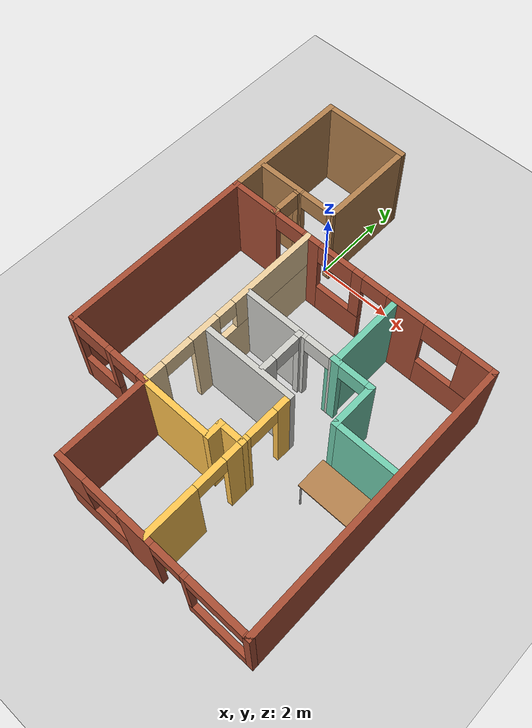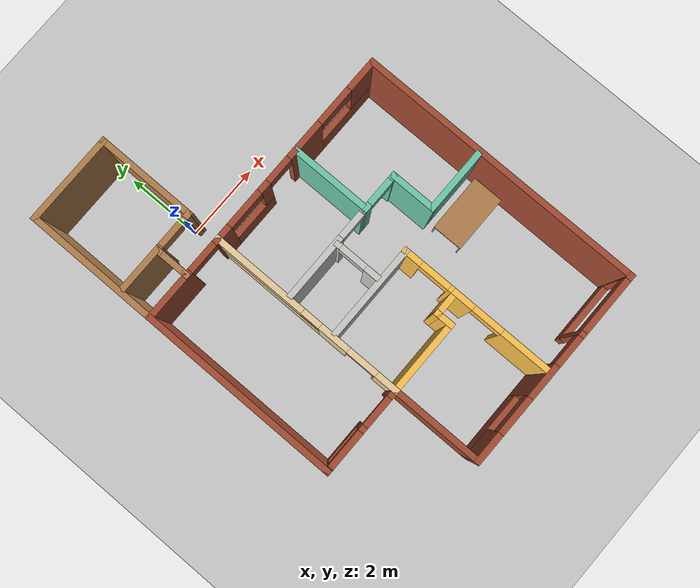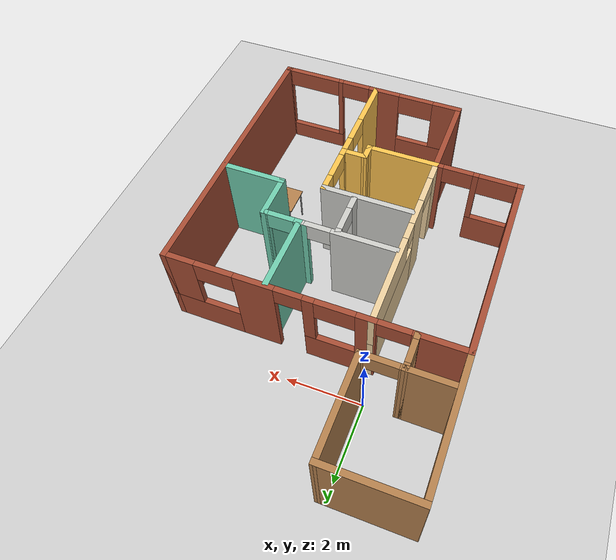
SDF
<sdf version="1.7">
 <world name="default">
  <plugin name="welcome" filename="libwelcome.so"/>
  <plugin filename="libcollision_map_creator.so" name="collision_map_creator"/>
  <light name="sun" type="directional">
   <pose>0 0 10 0 -0 0</pose>
   <diffuse>0.8 0.8 0.8 1</diffuse>
   <specular>0.2 0.2 0.2 1</specular>
   <attenuation>
    <range>1000</range>
    <constant>0.9</constant>
    <linear>0.01</linear>
    <quadratic>0.001</quadratic>
   </attenuation>
   <direction>-0.5 0.1 -0.9</direction>
   <spot><inner_angle>0</inner_angle><outer_angle>0</outer_angle><falloff>0</falloff></spot>
  </light>
  <model name="ground_plane">
   <static>1</static>
   <link name="link">
    <collision name="collision">
     <geometry><plane><normal>0 0 1</normal><size>100 100</size></plane></geometry>
     <surface>
      <contact><collide_bitmask>65535</collide_bitmask></contact>
      <friction><ode><mu>100</mu><mu2>50</mu2></ode></friction>
     </surface>
    </collision>
    <visual name="visual">
     <cast_shadows>0</cast_shadows>
     <geometry><plane><normal>0 0 1</normal><size>100 100</size></plane></geometry>
     <material>
      <script><uri>file://media/materials/scripts/gazebo.material</uri><name>Gazebo/Grey</name></script>
     </material>
    </visual>
   </link>
  </model>
  <gravity>0 0 -9.8</gravity>
  <magnetic_field>6e-06 2.3e-05 -4.2e-05</magnetic_field>
  <atmosphere type="adiabatic"/>
  <physics name="default_physics" default="0" type="ode">
   <max_step_size>0.001</max_step_size>
   <real_time_factor>1</real_time_factor>
   <real_time_update_rate>1000</real_time_update_rate>
  </physics>
  <scene><ambient>0.4 0.4 0.4 1</ambient><background>0.7 0.7 0.7 1</background><shadows>1</shadows></scene>
  <spherical_coordinates>
   <surface_model>EARTH_WGS84</surface_model>
   <latitude_deg>0</latitude_deg>
   <longitude_deg>0</longitude_deg>
   <elevation>0</elevation>
   <heading_deg>0</heading_deg>
  </spherical_coordinates>
  <model name="Building">
   <pose>1.6411 -2.93 0 0 -0 0</pose>
   <link name="Wall_101">
    <collision name="Wall_101_Collision">
     <geometry><box><size>3.5 0.15 2.5</size></box></geometry>
     <pose>0 0 1.25 0 -0 0</pose>
    </collision>
    <visual name="Wall_101_Visual">
     <pose>0 0 1.25 0 -0 0</pose>
     <geometry><box><size>3.5 0.15 2.5</size></box></geometry>
     <material>
      <script><uri>file://media/materials/scripts/gazebo.material</uri><name>Gazebo/Wood</name></script>
      <ambient>1 1 1 1</ambient>
     </material>
     <meta><layer>0</layer></meta>
    </visual>
    <pose>-3.72481 3.67494 0 0 -0 1.5708</pose>
   </link>
   <link name="Wall_107">
    <collision name="Wall_107_Collision">
     <geometry><box><size>2.39871 0.15 2.5</size></box></geometry>
     <pose>0 0 1.25 0 -0 0</pose>
    </collision>
    <visual name="Wall_107_Visual">
     <pose>0 0 1.25 0 -0 0</pose>
     <geometry><box><size>2.39871 0.15 2.5</size></box></geometry>
     <material>
      <script><uri>file://media/materials/scripts/gazebo.material</uri><name>Gazebo/Wood</name></script>
      <ambient>1 1 1 1</ambient>
     </material>
     <meta><layer>0</layer></meta>
    </visual>
    <pose>-2.60045 5.34997 0 0 -0 2.5e-05</pose>
   </link>
   <link name="Wall_109">
    <pose>-2.5181 2.433 0 0 -0 1.5708</pose>
    <visual name="Wall_109_Visual_0">
     <pose>-0.406862 0 1.25 0 -0 0</pose>
     <geometry><box><size>0.186276 0.15 2.5</size></box></geometry>
     <material>
      <script><uri>file://media/materials/scripts/gazebo.material</uri><name>Gazebo/Wood</name></script>
      <ambient>1 1 1 1</ambient>
     </material>
     <meta><layer>0</layer></meta>
    </visual>
    <collision name="Wall_109_Collision_0">
     <geometry><box><size>0.186276 0.15 2.5</size></box></geometry>
     <pose>-0.406862 0 1.25 0 -0 0</pose>
    </collision>
    <visual name="Wall_109_Visual_1">
     <pose>0.393138 0 1.25 0 -0 0</pose>
     <geometry><box><size>0.213724 0.15 2.5</size></box></geometry>
     <material>
      <script><uri>file://media/materials/scripts/gazebo.material</uri><name>Gazebo/Wood</name></script>
      <ambient>1 1 1 1</ambient>
     </material>
     <meta><layer>0</layer></meta>
    </visual>
    <collision name="Wall_109_Collision_1">
     <geometry><box><size>0.213724 0.15 2.5</size></box></geometry>
     <pose>0.393138 0 1.25 0 -0 0</pose>
    </collision>
    <visual name="Wall_109_Visual_2">
     <pose>-0.013724 0 2.25 0 -0 0</pose>
     <geometry><box><size>0.6 0.15 0.5</size></box></geometry>
     <material>
      <script><uri>file://media/materials/scripts/gazebo.material</uri><name>Gazebo/Wood</name></script>
      <ambient>1 1 1 1</ambient>
     </material>
     <meta><layer>0</layer></meta>
    </visual>
    <collision name="Wall_109_Collision_2">
     <geometry><box><size>0.6 0.15 0.5</size></box></geometry>
     <pose>-0.013724 0 2.25 0 -0 0</pose>
    </collision>
   </link>
   <link name="Wall_111">
    <collision name="Wall_111_Collision">
     <geometry><box><size>1.2505 0.15 2.5</size></box></geometry>
     <pose>0 0 1.25 0 -0 0</pose>
    </collision>
    <visual name="Wall_111_Visual">
     <pose>0 0 1.25 0 -0 0</pose>
     <geometry><box><size>1.2505 0.15 2.5</size></box></geometry>
     <material>
      <script><uri>file://media/materials/scripts/gazebo.material</uri><name>Gazebo/Wood</name></script>
      <ambient>1 1 1 1</ambient>
     </material>
     <meta><layer>0</layer></meta>
    </visual>
    <pose>-3.06835 2.85789 0 0 0 -3.14139</pose>
   </link>
   <link name="Wall_113">
    <pose>-1.9981 2.858 0 0 -0 0</pose>
    <visual name="Wall_113_Visual_0">
     <pose>-0.4985 0 1.25 0 -0 0</pose>
     <geometry><box><size>0.193 0.15 2.5</size></box></geometry>
     <material>
      <script><uri>file://media/materials/scripts/gazebo.material</uri><name>Gazebo/Wood</name></script>
      <ambient>1 1 1 1</ambient>
     </material>
     <meta><layer>0</layer></meta>
    </visual>
    <collision name="Wall_113_Collision_0">
     <geometry><box><size>0.193 0.15 2.5</size></box></geometry>
     <pose>-0.4985 0 1.25 0 -0 0</pose>
    </collision>
    <visual name="Wall_113_Visual_1">
     <pose>0.4965 0 1.25 0 -0 0</pose>
     <geometry><box><size>0.197 0.15 2.5</size></box></geometry>
     <material>
      <script><uri>file://media/materials/scripts/gazebo.material</uri><name>Gazebo/Wood</name></script>
      <ambient>1 1 1 1</ambient>
     </material>
     <meta><layer>0</layer></meta>
    </visual>
    <collision name="Wall_113_Collision_1">
     <geometry><box><size>0.197 0.15 2.5</size></box></geometry>
     <pose>0.4965 0 1.25 0 -0 0</pose>
    </collision>
    <visual name="Wall_113_Visual_2">
     <pose>-0.002 0 2.25 0 -0 0</pose>
     <geometry><box><size>0.8 0.15 0.5</size></box></geometry>
     <material>
      <script><uri>file://media/materials/scripts/gazebo.material</uri><name>Gazebo/Wood</name></script>
      <ambient>1 1 1 1</ambient>
     </material>
     <meta><layer>0</layer></meta>
    </visual>
    <collision name="Wall_113_Collision_2">
     <geometry><box><size>0.8 0.15 0.5</size></box></geometry>
     <pose>-0.002 0 2.25 0 -0 0</pose>
    </collision>
   </link>
   <link name="Wall_115">
    <collision name="Wall_115_Collision">
     <geometry><box><size>2.642 0.15 2.5</size></box></geometry>
     <pose>0 0 1.25 0 -0 0</pose>
    </collision>
    <visual name="Wall_115_Visual">
     <pose>0 0 1.25 0 -0 0</pose>
     <geometry><box><size>2.642 0.15 2.5</size></box></geometry>
     <material>
      <script><uri>file://media/materials/scripts/gazebo.material</uri><name>Gazebo/Wood</name></script>
      <ambient>1 1 1 1</ambient>
     </material>
     <meta><layer>0</layer></meta>
    </visual>
    <pose>-1.4771 4.104 0 0 -0 1.56999</pose>
   </link>
   <link name="Wall_25">
    <collision name="Wall_25_Collision">
     <geometry><box><size>5.2 0.15 2.5</size></box></geometry>
     <pose>0 0 1.25 0 -0 0</pose>
    </collision>
    <visual name="Wall_25_Visual">
     <pose>0 0 1.25 0 -0 0</pose>
     <geometry><box><size>5.2 0.15 2.5</size></box></geometry>
     <material>
      <script><uri>file://media/materials/scripts/gazebo.material</uri><name>Gazebo/Bricks</name></script>
      <ambient>1 1 1 1</ambient>
     </material>
     <meta><layer>0</layer></meta>
    </visual>
    <pose>-3.72495 -0.52503 0 0 0 -1.57085</pose>
   </link>
   <link name="Wall_27">
    <pose>-2.6006 -3.05 0 0 -0 0</pose>
    <visual name="Wall_27_Visual_0">
     <pose>-1.11544 0 1.25 0 -0 0</pose>
     <geometry><box><size>0.168303 0.15 2.5</size></box></geometry>
     <material>
      <script><uri>file://media/materials/scripts/gazebo.material</uri><name>Gazebo/Bricks</name></script>
      <ambient>0.760784 0.662745 0.627451 1</ambient>
     </material>
     <meta><layer>0</layer></meta>
    </visual>
    <collision name="Wall_27_Collision_0">
     <geometry><box><size>0.168303 0.15 2.5</size></box></geometry>
     <pose>-1.11544 0 1.25 0 -0 0</pose>
    </collision>
    <visual name="Wall_27_Visual_1">
     <pose>1.05915 0 1.25 0 -0 0</pose>
     <geometry><box><size>0.28088 0.15 2.5</size></box></geometry>
     <material>
      <script><uri>file://media/materials/scripts/gazebo.material</uri><name>Gazebo/Bricks</name></script>
      <ambient>0.760784 0.662745 0.627451 1</ambient>
     </material>
     <meta><layer>0</layer></meta>
    </visual>
    <collision name="Wall_27_Collision_1">
     <geometry><box><size>0.28088 0.15 2.5</size></box></geometry>
     <pose>1.05915 0 1.25 0 -0 0</pose>
    </collision>
    <visual name="Wall_27_Visual_2">
     <pose>-0.456289 0 0.45 0 -0 0</pose>
     <geometry><box><size>1.15 0.15 0.9</size></box></geometry>
     <material>
      <script><uri>file://media/materials/scripts/gazebo.material</uri><name>Gazebo/Bricks</name></script>
      <ambient>0.760784 0.662745 0.627451 1</ambient>
     </material>
     <meta><layer>0</layer></meta>
    </visual>
    <collision name="Wall_27_Collision_2">
     <geometry><box><size>1.15 0.15 0.9</size></box></geometry>
     <pose>-0.456289 0 0.45 0 -0 0</pose>
    </collision>
    <visual name="Wall_27_Visual_3">
     <pose>0.043711 0 1.7 0 -0 0</pose>
     <geometry><box><size>0.15 0.15 1.6</size></box></geometry>
     <material>
      <script><uri>file://media/materials/scripts/gazebo.material</uri><name>Gazebo/Bricks</name></script>
      <ambient>0.760784 0.662745 0.627451 1</ambient>
     </material>
     <meta><layer>0</layer></meta>
    </visual>
    <collision name="Wall_27_Collision_3">
     <geometry><box><size>0.15 0.15 1.6</size></box></geometry>
     <pose>0.043711 0 1.7 0 -0 0</pose>
    </collision>
    <visual name="Wall_27_Visual_4">
     <pose>-0.531289 0 2.2 0 -0 0</pose>
     <geometry><box><size>1 0.15 0.6</size></box></geometry>
     <material>
      <script><uri>file://media/materials/scripts/gazebo.material</uri><name>Gazebo/Bricks</name></script>
      <ambient>0.760784 0.662745 0.627451 1</ambient>
     </material>
     <meta><layer>0</layer></meta>
    </visual>
    <collision name="Wall_27_Collision_4">
     <geometry><box><size>1 0.15 0.6</size></box></geometry>
     <pose>-0.531289 0 2.2 0 -0 0</pose>
    </collision>
    <visual name="Wall_27_Visual_5">
     <pose>0.518711 0 2.25 0 -0 0</pose>
     <geometry><box><size>0.8 0.15 0.5</size></box></geometry>
     <material>
      <script><uri>file://media/materials/scripts/gazebo.material</uri><name>Gazebo/Bricks</name></script>
      <ambient>0.760784 0.662745 0.627451 1</ambient>
     </material>
     <meta><layer>0</layer></meta>
    </visual>
    <collision name="Wall_27_Collision_5">
     <geometry><box><size>0.8 0.15 0.5</size></box></geometry>
     <pose>0.518711 0 2.25 0 -0 0</pose>
    </collision>
   </link>
   <link name="Wall_29">
    <collision name="Wall_29_Collision">
     <geometry><box><size>2.30006 0.15 2.5</size></box></geometry>
     <pose>0 0 1.25 0 -0 0</pose>
    </collision>
    <visual name="Wall_29_Visual">
     <pose>0 0 1.25 0 -0 0</pose>
     <geometry><box><size>2.30006 0.15 2.5</size></box></geometry>
     <material>
      <script><uri>file://media/materials/scripts/gazebo.material</uri><name>Gazebo/Bricks</name></script>
      <ambient>1 1 1 1</ambient>
     </material>
     <meta><layer>0</layer></meta>
    </visual>
    <pose>-1.4761 -4.125 0 0 0 -1.5708</pose>
   </link>
   <link name="Wall_32">
    <collision name="Wall_32_Collision">
     <geometry><box><size>7.5 0.15 2.5</size></box></geometry>
     <pose>0 0 1.25 0 -0 0</pose>
    </collision>
    <visual name="Wall_32_Visual">
     <pose>0 0 1.25 0 -0 0</pose>
     <geometry><box><size>7.5 0.15 2.5</size></box></geometry>
     <material>
      <script><uri>file://media/materials/scripts/gazebo.material</uri><name>Gazebo/Bricks</name></script>
      <ambient>1 1 1 1</ambient>
     </material>
     <meta><layer>0</layer></meta>
    </visual>
    <pose>3.72519 -1.67506 0 0 0 -1.5708</pose>
   </link>
   <link name="Wall_34">
    <pose>1.12519 -5.35006 0 0 -0 3.14159</pose>
    <visual name="Wall_34_Visual_0">
     <pose>-2.58626 0 1.25 0 -0 0</pose>
     <geometry><box><size>0.177479 0.15 2.5</size></box></geometry>
     <material>
      <script><uri>file://media/materials/scripts/gazebo.material</uri><name>Gazebo/Bricks</name></script>
      <ambient>1 1 1 1</ambient>
     </material>
     <meta><layer>0</layer></meta>
    </visual>
    <collision name="Wall_34_Collision_0">
     <geometry><box><size>0.177479 0.15 2.5</size></box></geometry>
     <pose>-2.58626 0 1.25 0 -0 0</pose>
    </collision>
    <visual name="Wall_34_Visual_1">
     <pose>0.393157 0 1.25 0 -0 0</pose>
     <geometry><box><size>0.919189 0.15 2.5</size></box></geometry>
     <material>
      <script><uri>file://media/materials/scripts/gazebo.material</uri><name>Gazebo/Bricks</name></script>
      <ambient>1 1 1 1</ambient>
     </material>
     <meta><layer>0</layer></meta>
    </visual>
    <collision name="Wall_34_Collision_1">
     <geometry><box><size>0.919189 0.15 2.5</size></box></geometry>
     <pose>0.393157 0 1.25 0 -0 0</pose>
    </collision>
    <visual name="Wall_34_Visual_2">
     <pose>-1.68198 0 0.25 0 -0 0</pose>
     <geometry><box><size>1.63108 0.15 0.5</size></box></geometry>
     <material>
      <script><uri>file://media/materials/scripts/gazebo.material</uri><name>Gazebo/Bricks</name></script>
      <ambient>1 1 1 1</ambient>
     </material>
     <meta><layer>0</layer></meta>
    </visual>
    <collision name="Wall_34_Collision_2">
     <geometry><box><size>1.63108 0.15 0.5</size></box></geometry>
     <pose>-1.68198 0 0.25 0 -0 0</pose>
    </collision>
    <visual name="Wall_34_Visual_3">
     <pose>1.76388 0 0.45 0 -0 0</pose>
     <geometry><box><size>1.82225 0.15 0.9</size></box></geometry>
     <material>
      <script><uri>file://media/materials/scripts/gazebo.material</uri><name>Gazebo/Bricks</name></script>
      <ambient>1 1 1 1</ambient>
     </material>
     <meta><layer>0</layer></meta>
    </visual>
    <collision name="Wall_34_Collision_3">
     <geometry><box><size>1.82225 0.15 0.9</size></box></geometry>
     <pose>1.76388 0 0.45 0 -0 0</pose>
    </collision>
    <visual name="Wall_34_Visual_4">
     <pose>-0.931979 0 1.5 0 -0 0</pose>
     <geometry><box><size>0.131083 0.15 2</size></box></geometry>
     <material>
      <script><uri>file://media/materials/scripts/gazebo.material</uri><name>Gazebo/Bricks</name></script>
      <ambient>1 1 1 1</ambient>
     </material>
     <meta><layer>0</layer></meta>
    </visual>
    <collision name="Wall_34_Collision_4">
     <geometry><box><size>0.131083 0.15 2</size></box></geometry>
     <pose>-0.931979 0 1.5 0 -0 0</pose>
    </collision>
    <visual name="Wall_34_Visual_5">
     <pose>2.26388 0 1.7 0 -0 0</pose>
     <geometry><box><size>0.822249 0.15 1.6</size></box></geometry>
     <material>
      <script><uri>file://media/materials/scripts/gazebo.material</uri><name>Gazebo/Bricks</name></script>
      <ambient>1 1 1 1</ambient>
     </material>
     <meta><layer>0</layer></meta>
    </visual>
    <collision name="Wall_34_Collision_5">
     <geometry><box><size>0.822249 0.15 1.6</size></box></geometry>
     <pose>2.26388 0 1.7 0 -0 0</pose>
    </collision>
    <visual name="Wall_34_Visual_6">
     <pose>1.35275 0 2.2 0 -0 0</pose>
     <geometry><box><size>1 0.15 0.6</size></box></geometry>
     <material>
      <script><uri>file://media/materials/scripts/gazebo.material</uri><name>Gazebo/Bricks</name></script>
      <ambient>1 1 1 1</ambient>
     </material>
     <meta><layer>0</layer></meta>
    </visual>
    <collision name="Wall_34_Collision_6">
     <geometry><box><size>1 0.15 0.6</size></box></geometry>
     <pose>1.35275 0 2.2 0 -0 0</pose>
    </collision>
    <visual name="Wall_34_Visual_7">
     <pose>-1.74752 0 2.25 0 -0 0</pose>
     <geometry><box><size>1.5 0.15 0.5</size></box></geometry>
     <material>
      <script><uri>file://media/materials/scripts/gazebo.material</uri><name>Gazebo/Bricks</name></script>
      <ambient>1 1 1 1</ambient>
     </material>
     <meta><layer>0</layer></meta>
    </visual>
    <collision name="Wall_34_Collision_7">
     <geometry><box><size>1.5 0.15 0.5</size></box></geometry>
     <pose>-1.74752 0 2.25 0 -0 0</pose>
    </collision>
    <visual name="Wall_34_Visual_8">
     <pose>-0.466438 0 2.25 0 -0 0</pose>
     <geometry><box><size>0.8 0.15 0.5</size></box></geometry>
     <material>
      <script><uri>file://media/materials/scripts/gazebo.material</uri><name>Gazebo/Bricks</name></script>
      <ambient>1 1 1 1</ambient>
     </material>
     <meta><layer>0</layer></meta>
    </visual>
    <collision name="Wall_34_Collision_8">
     <geometry><box><size>0.8 0.15 0.5</size></box></geometry>
     <pose>-0.466438 0 2.25 0 -0 0</pose>
    </collision>
   </link>
   <link name="Wall_39">
    <pose>-1.4761 -0.525002 0 0 -0 1.5708</pose>
    <visual name="Wall_39_Visual_0">
     <pose>-2.29749 0 1.25 0 -0 0</pose>
     <geometry><box><size>0.604971 0.15 2.5</size></box></geometry>
     <material>
      <script><uri>file://media/materials/scripts/gazebo.material</uri><name>Gazebo/Grey</name></script>
      <ambient>0.921569 0.807843 0.615686 1</ambient>
     </material>
     <meta><layer>0</layer></meta>
    </visual>
    <collision name="Wall_39_Collision_0">
     <geometry><box><size>0.604971 0.15 2.5</size></box></geometry>
     <pose>-2.29749 0 1.25 0 -0 0</pose>
    </collision>
    <visual name="Wall_39_Visual_1">
     <pose>-0.798602 0 1.25 0 -0 0</pose>
     <geometry><box><size>0.792797 0.15 2.5</size></box></geometry>
     <material>
      <script><uri>file://media/materials/scripts/gazebo.material</uri><name>Gazebo/Grey</name></script>
      <ambient>0.921569 0.807843 0.615686 1</ambient>
     </material>
     <meta><layer>0</layer></meta>
    </visual>
    <collision name="Wall_39_Collision_1">
     <geometry><box><size>0.792797 0.15 2.5</size></box></geometry>
     <pose>-0.798602 0 1.25 0 -0 0</pose>
    </collision>
    <visual name="Wall_39_Visual_2">
     <pose>1.09888 0 0.75 0 -0 0</pose>
     <geometry><box><size>3.00217 0.15 1.5</size></box></geometry>
     <material>
      <script><uri>file://media/materials/scripts/gazebo.material</uri><name>Gazebo/Grey</name></script>
      <ambient>0.921569 0.807843 0.615686 1</ambient>
     </material>
     <meta><layer>0</layer></meta>
    </visual>
    <collision name="Wall_39_Collision_2">
     <geometry><box><size>3.00217 0.15 1.5</size></box></geometry>
     <pose>1.09888 0 0.75 0 -0 0</pose>
    </collision>
    <visual name="Wall_39_Visual_3">
     <pose>1.34888 0 2 0 -0 0</pose>
     <geometry><box><size>2.50217 0.15 1</size></box></geometry>
     <material>
      <script><uri>file://media/materials/scripts/gazebo.material</uri><name>Gazebo/Grey</name></script>
      <ambient>0.921569 0.807843 0.615686 1</ambient>
     </material>
     <meta><layer>0</layer></meta>
    </visual>
    <collision name="Wall_39_Collision_3">
     <geometry><box><size>2.50217 0.15 1</size></box></geometry>
     <pose>1.34888 0 2 0 -0 0</pose>
    </collision>
    <visual name="Wall_39_Visual_4">
     <pose>-1.595 0 2.25 0 -0 0</pose>
     <geometry><box><size>0.8 0.15 0.5</size></box></geometry>
     <material>
      <script><uri>file://media/materials/scripts/gazebo.material</uri><name>Gazebo/Grey</name></script>
      <ambient>0.921569 0.807843 0.615686 1</ambient>
     </material>
     <meta><layer>0</layer></meta>
    </visual>
    <collision name="Wall_39_Collision_4">
     <geometry><box><size>0.8 0.15 0.5</size></box></geometry>
     <pose>-1.595 0 2.25 0 -0 0</pose>
    </collision>
    <visual name="Wall_39_Visual_5">
     <pose>-0.152203 0 2.25 0 -0 0</pose>
     <geometry><box><size>0.5 0.15 0.5</size></box></geometry>
     <material>
      <script><uri>file://media/materials/scripts/gazebo.material</uri><name>Gazebo/Grey</name></script>
      <ambient>0.921569 0.807843 0.615686 1</ambient>
     </material>
     <meta><layer>0</layer></meta>
    </visual>
    <collision name="Wall_39_Collision_5">
     <geometry><box><size>0.5 0.15 0.5</size></box></geometry>
     <pose>-0.152203 0 2.25 0 -0 0</pose>
    </collision>
   </link>
   <link name="Wall_4">
    <pose>0.000193 1.99994 0 0 -0 0</pose>
    <visual name="Wall_4_Visual_0">
     <pose>-3.10005 0 1.25 0 -0 0</pose>
     <geometry><box><size>1.39989 0.15 2.5</size></box></geometry>
     <material>
      <script><uri>file://media/materials/scripts/gazebo.material</uri><name>Gazebo/Bricks</name></script>
      <ambient>1 1 1 1</ambient>
     </material>
     <meta><layer>0</layer></meta>
    </visual>
    <collision name="Wall_4_Collision_0">
     <geometry><box><size>1.39989 0.15 2.5</size></box></geometry>
     <pose>-3.10005 0 1.25 0 -0 0</pose>
    </collision>
    <visual name="Wall_4_Visual_1">
     <pose>-1.34947 0 1.25 0 -0 0</pose>
     <geometry><box><size>0.501265 0.15 2.5</size></box></geometry>
     <material>
      <script><uri>file://media/materials/scripts/gazebo.material</uri><name>Gazebo/Bricks</name></script>
      <ambient>1 1 1 1</ambient>
     </material>
     <meta><layer>0</layer></meta>
    </visual>
    <collision name="Wall_4_Collision_1">
     <geometry><box><size>0.501265 0.15 2.5</size></box></geometry>
     <pose>-1.34947 0 1.25 0 -0 0</pose>
    </collision>
    <visual name="Wall_4_Visual_2">
     <pose>1.40766 0 1.25 0 -0 0</pose>
     <geometry><box><size>1.036 0.15 2.5</size></box></geometry>
     <material>
      <script><uri>file://media/materials/scripts/gazebo.material</uri><name>Gazebo/Bricks</name></script>
      <ambient>1 1 1 1</ambient>
     </material>
     <meta><layer>0</layer></meta>
    </visual>
    <collision name="Wall_4_Collision_2">
     <geometry><box><size>1.036 0.15 2.5</size></box></geometry>
     <pose>1.40766 0 1.25 0 -0 0</pose>
    </collision>
    <visual name="Wall_4_Visual_3">
     <pose>-0.454591 0 0.45 0 -0 0</pose>
     <geometry><box><size>1.2885 0.15 0.9</size></box></geometry>
     <material>
      <script><uri>file://media/materials/scripts/gazebo.material</uri><name>Gazebo/Bricks</name></script>
      <ambient>1 1 1 1</ambient>
     </material>
     <meta><layer>0</layer></meta>
    </visual>
    <collision name="Wall_4_Collision_3">
     <geometry><box><size>1.2885 0.15 0.9</size></box></geometry>
     <pose>-0.454591 0 0.45 0 -0 0</pose>
    </collision>
    <visual name="Wall_4_Visual_4">
     <pose>2.86283 0 0.45 0 -0 0</pose>
     <geometry><box><size>1.87434 0.15 0.9</size></box></geometry>
     <material>
      <script><uri>file://media/materials/scripts/gazebo.material</uri><name>Gazebo/Bricks</name></script>
      <ambient>1 1 1 1</ambient>
     </material>
     <meta><layer>0</layer></meta>
    </visual>
    <collision name="Wall_4_Collision_4">
     <geometry><box><size>1.87434 0.15 0.9</size></box></geometry>
     <pose>2.86283 0 0.45 0 -0 0</pose>
    </collision>
    <visual name="Wall_4_Visual_5">
     <pose>0.045409 0 1.7 0 -0 0</pose>
     <geometry><box><size>0.2885 0.15 1.6</size></box></geometry>
     <material>
      <script><uri>file://media/materials/scripts/gazebo.material</uri><name>Gazebo/Bricks</name></script>
      <ambient>1 1 1 1</ambient>
     </material>
     <meta><layer>0</layer></meta>
    </visual>
    <collision name="Wall_4_Collision_5">
     <geometry><box><size>0.2885 0.15 1.6</size></box></geometry>
     <pose>0.045409 0 1.7 0 -0 0</pose>
    </collision>
    <visual name="Wall_4_Visual_6">
     <pose>0.045409 0 1.7 0 -0 0</pose>
     <geometry><box><size>0.2885 0.15 1.6</size></box></geometry>
     <material>
      <script><uri>file://media/materials/scripts/gazebo.material</uri><name>Gazebo/Bricks</name></script>
      <ambient>1 1 1 1</ambient>
     </material>
     <meta><layer>0</layer></meta>
    </visual>
    <collision name="Wall_4_Collision_6">
     <geometry><box><size>0.2885 0.15 1.6</size></box></geometry>
     <pose>0.045409 0 1.7 0 -0 0</pose>
    </collision>
    <visual name="Wall_4_Visual_7">
     <pose>3.36283 0 1.7 0 -0 0</pose>
     <geometry><box><size>0.874341 0.15 1.6</size></box></geometry>
     <material>
      <script><uri>file://media/materials/scripts/gazebo.material</uri><name>Gazebo/Bricks</name></script>
      <ambient>1 1 1 1</ambient>
     </material>
     <meta><layer>0</layer></meta>
    </visual>
    <collision name="Wall_4_Collision_7">
     <geometry><box><size>0.874341 0.15 1.6</size></box></geometry>
     <pose>3.36283 0 1.7 0 -0 0</pose>
    </collision>
    <visual name="Wall_4_Visual_8">
     <pose>-0.598841 0 2.2 0 -0 0</pose>
     <geometry><box><size>1 0.15 0.6</size></box></geometry>
     <material>
      <script><uri>file://media/materials/scripts/gazebo.material</uri><name>Gazebo/Bricks</name></script>
      <ambient>1 1 1 1</ambient>
     </material>
     <meta><layer>0</layer></meta>
    </visual>
    <collision name="Wall_4_Collision_8">
     <geometry><box><size>1 0.15 0.6</size></box></geometry>
     <pose>-0.598841 0 2.2 0 -0 0</pose>
    </collision>
    <visual name="Wall_4_Visual_9">
     <pose>2.42566 0 2.2 0 -0 0</pose>
     <geometry><box><size>1 0.15 0.6</size></box></geometry>
     <material>
      <script><uri>file://media/materials/scripts/gazebo.material</uri><name>Gazebo/Bricks</name></script>
      <ambient>1 1 1 1</ambient>
     </material>
     <meta><layer>0</layer></meta>
    </visual>
    <collision name="Wall_4_Collision_9">
     <geometry><box><size>1 0.15 0.6</size></box></geometry>
     <pose>2.42566 0 2.2 0 -0 0</pose>
    </collision>
    <visual name="Wall_4_Visual_10">
     <pose>-2.00011 0 2.25 0 -0 0</pose>
     <geometry><box><size>0.8 0.15 0.5</size></box></geometry>
     <material>
      <script><uri>file://media/materials/scripts/gazebo.material</uri><name>Gazebo/Bricks</name></script>
      <ambient>1 1 1 1</ambient>
     </material>
     <meta><layer>0</layer></meta>
    </visual>
    <collision name="Wall_4_Collision_10">
     <geometry><box><size>0.8 0.15 0.5</size></box></geometry>
     <pose>-2.00011 0 2.25 0 -0 0</pose>
    </collision>
    <visual name="Wall_4_Visual_11">
     <pose>0.539659 0 2.25 0 -0 0</pose>
     <geometry><box><size>0.7 0.15 0.5</size></box></geometry>
     <material>
      <script><uri>file://media/materials/scripts/gazebo.material</uri><name>Gazebo/Bricks</name></script>
      <ambient>1 1 1 1</ambient>
     </material>
     <meta><layer>0</layer></meta>
    </visual>
    <collision name="Wall_4_Collision_11">
     <geometry><box><size>0.7 0.15 0.5</size></box></geometry>
     <pose>0.539659 0 2.25 0 -0 0</pose>
    </collision>
    <visual name="Wall_4_Visual_12">
     <pose>0.539659 0 2.25 0 -0 0</pose>
     <geometry><box><size>0.7 0.15 0.5</size></box></geometry>
     <material>
      <script><uri>file://media/materials/scripts/gazebo.material</uri><name>Gazebo/Bricks</name></script>
      <ambient>1 1 1 1</ambient>
     </material>
     <meta><layer>0</layer></meta>
    </visual>
    <collision name="Wall_4_Collision_12">
     <geometry><box><size>0.7 0.15 0.5</size></box></geometry>
     <pose>0.539659 0 2.25 0 -0 0</pose>
    </collision>
   </link>
   <link name="Wall_41">
    <collision name="Wall_41_Collision">
     <geometry><box><size>2.00086 0.15 2.5</size></box></geometry>
     <pose>0 0 1.25 0 -0 0</pose>
    </collision>
    <visual name="Wall_41_Visual">
     <pose>0 0 1.25 0 -0 0</pose>
     <geometry><box><size>2.00086 0.15 2.5</size></box></geometry>
     <material>
      <script><uri>file://media/materials/scripts/gazebo.material</uri><name>Gazebo/Grey</name></script>
      <ambient>1 0.764706 0.305882 1</ambient>
     </material>
     <meta><layer>0</layer></meta>
    </visual>
    <pose>-0.550454 -3.05003 0 0 0 -3.1e-05</pose>
   </link>
   <link name="Wall_43">
    <collision name="Wall_43_Collision">
     <geometry><box><size>0.513225 0.15 2.5</size></box></geometry>
     <pose>0 0 1.25 0 -0 0</pose>
    </collision>
    <visual name="Wall_43_Visual">
     <pose>0 0 1.25 0 -0 0</pose>
     <geometry><box><size>0.513225 0.15 2.5</size></box></geometry>
     <material>
      <script><uri>file://media/materials/scripts/gazebo.material</uri><name>Gazebo/Grey</name></script>
      <ambient>1 0.764706 0.305882 1</ambient>
     </material>
     <meta><layer>0</layer></meta>
    </visual>
    <pose>0.375193 -2.86845 0 0 -0 1.5708</pose>
   </link>
   <link name="Wall_45">
    <collision name="Wall_45_Collision">
     <geometry><box><size>0.75 0.15 2.5</size></box></geometry>
     <pose>0 0 1.25 0 -0 0</pose>
    </collision>
    <visual name="Wall_45_Visual">
     <pose>0 0 1.25 0 -0 0</pose>
     <geometry><box><size>0.75 0.15 2.5</size></box></geometry>
     <material>
      <script><uri>file://media/materials/scripts/gazebo.material</uri><name>Gazebo/Grey</name></script>
      <ambient>1 0.764706 0.305882 1</ambient>
     </material>
     <meta><layer>0</layer></meta>
    </visual>
    <pose>0.675046 -2.68692 0 0 0 -0.000281</pose>
   </link>
   <link name="Wall_50">
    <pose>0.975046 -4.01192 0 0 0 -1.57069</pose>
    <visual name="Wall_50_Visual_0">
     <pose>-1.10695 0 1.25 0 -0 0</pose>
     <geometry><box><size>0.586109 0.15 2.5</size></box></geometry>
     <material>
      <script><uri>file://media/materials/scripts/gazebo.material</uri><name>Gazebo/Grey</name></script>
      <ambient>1 0.764706 0.305882 1</ambient>
     </material>
     <meta><layer>0</layer></meta>
    </visual>
    <collision name="Wall_50_Collision_0">
     <geometry><box><size>0.586109 0.15 2.5</size></box></geometry>
     <pose>-1.10695 0 1.25 0 -0 0</pose>
    </collision>
    <visual name="Wall_50_Visual_1">
     <pose>0.693055 0 1.25 0 -0 0</pose>
     <geometry><box><size>1.41389 0.15 2.5</size></box></geometry>
     <material>
      <script><uri>file://media/materials/scripts/gazebo.material</uri><name>Gazebo/Grey</name></script>
      <ambient>1 0.764706 0.305882 1</ambient>
     </material>
     <meta><layer>0</layer></meta>
    </visual>
    <collision name="Wall_50_Collision_1">
     <geometry><box><size>1.41389 0.15 2.5</size></box></geometry>
     <pose>0.693055 0 1.25 0 -0 0</pose>
    </collision>
    <visual name="Wall_50_Visual_2">
     <pose>-0.413891 0 2.25 0 -0 0</pose>
     <geometry><box><size>0.8 0.15 0.5</size></box></geometry>
     <material>
      <script><uri>file://media/materials/scripts/gazebo.material</uri><name>Gazebo/Grey</name></script>
      <ambient>1 0.764706 0.305882 1</ambient>
     </material>
     <meta><layer>0</layer></meta>
    </visual>
    <collision name="Wall_50_Collision_2">
     <geometry><box><size>0.8 0.15 0.5</size></box></geometry>
     <pose>-0.413891 0 2.25 0 -0 0</pose>
    </collision>
   </link>
   <link name="Wall_62">
    <pose>0.974898 -1.982 0 0 -0 1.5708</pose>
    <visual name="Wall_62_Visual_0">
     <pose>-0.658917 0 1.25 0 -0 0</pose>
     <geometry><box><size>0.241833 0.15 2.5</size></box></geometry>
     <material>
      <script><uri>file://media/materials/scripts/gazebo.material</uri><name>Gazebo/Grey</name></script>
      <ambient>1 0.764706 0.305882 1</ambient>
     </material>
     <meta><layer>0</layer></meta>
    </visual>
    <collision name="Wall_62_Collision_0">
     <geometry><box><size>0.241833 0.15 2.5</size></box></geometry>
     <pose>-0.658917 0 1.25 0 -0 0</pose>
    </collision>
    <visual name="Wall_62_Visual_1">
     <pose>0.520916 0 1.25 0 -0 0</pose>
     <geometry><box><size>0.517833 0.15 2.5</size></box></geometry>
     <material>
      <script><uri>file://media/materials/scripts/gazebo.material</uri><name>Gazebo/Grey</name></script>
      <ambient>1 0.764706 0.305882 1</ambient>
     </material>
     <meta><layer>0</layer></meta>
    </visual>
    <collision name="Wall_62_Collision_1">
     <geometry><box><size>0.517833 0.15 2.5</size></box></geometry>
     <pose>0.520916 0 1.25 0 -0 0</pose>
    </collision>
    <visual name="Wall_62_Visual_2">
     <pose>-0.138 0 2.25 0 -0 0</pose>
     <geometry><box><size>0.8 0.15 0.5</size></box></geometry>
     <material>
      <script><uri>file://media/materials/scripts/gazebo.material</uri><name>Gazebo/Grey</name></script>
      <ambient>1 0.764706 0.305882 1</ambient>
     </material>
     <meta><layer>0</layer></meta>
    </visual>
    <collision name="Wall_62_Collision_2">
     <geometry><box><size>0.8 0.15 0.5</size></box></geometry>
     <pose>-0.138 0 2.25 0 -0 0</pose>
    </collision>
   </link>
   <link name="Wall_64">
    <collision name="Wall_64_Collision">
     <geometry><box><size>2.5 0.15 2.5</size></box></geometry>
     <pose>0 0 1.25 0 -0 0</pose>
    </collision>
    <visual name="Wall_64_Visual">
     <pose>0 0 1.25 0 -0 0</pose>
     <geometry><box><size>2.5 0.15 2.5</size></box></geometry>
     <material>
      <script><uri>file://media/materials/scripts/gazebo.material</uri><name>Gazebo/CeilingTiled</name></script>
      <ambient>1 1 1 1</ambient>
     </material>
     <meta><layer>0</layer></meta>
    </visual>
    <pose>-0.200102 -1.277 0 0 -0 3.14159</pose>
   </link>
   <link name="Wall_77">
    <pose>-0.200102 -0.009552 0 0 -0 3.14159</pose>
    <visual name="Wall_77_Visual_0">
     <pose>-1.22093 0 1.25 0 -0 0</pose>
     <geometry><box><size>0.058144 0.15 2.5</size></box></geometry>
     <material>
      <script><uri>file://media/materials/scripts/gazebo.material</uri><name>Gazebo/CeilingTiled</name></script>
      <ambient>0.760784 0.662745 0.627451 1</ambient>
     </material>
     <meta><layer>0</layer></meta>
    </visual>
    <collision name="Wall_77_Collision_0">
     <geometry><box><size>0.058144 0.15 2.5</size></box></geometry>
     <pose>-1.22093 0 1.25 0 -0 0</pose>
    </collision>
    <visual name="Wall_77_Visual_1">
     <pose>0.379072 0 1.25 0 -0 0</pose>
     <geometry><box><size>1.74186 0.15 2.5</size></box></geometry>
     <material>
      <script><uri>file://media/materials/scripts/gazebo.material</uri><name>Gazebo/CeilingTiled</name></script>
      <ambient>0.760784 0.662745 0.627451 1</ambient>
     </material>
     <meta><layer>0</layer></meta>
    </visual>
    <collision name="Wall_77_Collision_1">
     <geometry><box><size>1.74186 0.15 2.5</size></box></geometry>
     <pose>0.379072 0 1.25 0 -0 0</pose>
    </collision>
    <visual name="Wall_77_Visual_2">
     <pose>-0.841856 0 2.25 0 -0 0</pose>
     <geometry><box><size>0.7 0.15 0.5</size></box></geometry>
     <material>
      <script><uri>file://media/materials/scripts/gazebo.material</uri><name>Gazebo/CeilingTiled</name></script>
      <ambient>0.760784 0.662745 0.627451 1</ambient>
     </material>
     <meta><layer>0</layer></meta>
    </visual>
    <collision name="Wall_77_Collision_2">
     <geometry><box><size>0.7 0.15 0.5</size></box></geometry>
     <pose>-0.841856 0 2.25 0 -0 0</pose>
    </collision>
   </link>
   <link name="Wall_86">
    <pose>0.125549 -0.61239 0 0 0 -1.5708</pose>
    <visual name="Wall_86_Visual_0">
     <pose>-0.544525 0 1.25 0 -0 0</pose>
     <geometry><box><size>0.160951 0.15 2.5</size></box></geometry>
     <material>
      <script><uri>file://media/materials/scripts/gazebo.material</uri><name>Gazebo/CeilingTiled</name></script>
      <ambient>1 1 1 1</ambient>
     </material>
     <meta><layer>0</layer></meta>
    </visual>
    <collision name="Wall_86_Collision_0">
     <geometry><box><size>0.160951 0.15 2.5</size></box></geometry>
     <pose>-0.544525 0 1.25 0 -0 0</pose>
    </collision>
    <visual name="Wall_86_Visual_1">
     <pose>0.430475 0 1.25 0 -0 0</pose>
     <geometry><box><size>0.389049 0.15 2.5</size></box></geometry>
     <material>
      <script><uri>file://media/materials/scripts/gazebo.material</uri><name>Gazebo/CeilingTiled</name></script>
      <ambient>1 1 1 1</ambient>
     </material>
     <meta><layer>0</layer></meta>
    </visual>
    <collision name="Wall_86_Collision_1">
     <geometry><box><size>0.389049 0.15 2.5</size></box></geometry>
     <pose>0.430475 0 1.25 0 -0 0</pose>
    </collision>
    <visual name="Wall_86_Visual_2">
     <pose>-0.114049 0 2.25 0 -0 0</pose>
     <geometry><box><size>0.7 0.15 0.5</size></box></geometry>
     <material>
      <script><uri>file://media/materials/scripts/gazebo.material</uri><name>Gazebo/CeilingTiled</name></script>
      <ambient>1 1 1 1</ambient>
     </material>
     <meta><layer>0</layer></meta>
    </visual>
    <collision name="Wall_86_Collision_2">
     <geometry><box><size>0.7 0.15 0.5</size></box></geometry>
     <pose>-0.114049 0 2.25 0 -0 0</pose>
    </collision>
   </link>
   <link name="Wall_88">
    <collision name="Wall_88_Collision">
     <geometry><box><size>2 0.15 2.5</size></box></geometry>
     <pose>0 0 1.25 0 -0 0</pose>
    </collision>
    <visual name="Wall_88_Visual">
     <pose>0 0 1.25 0 -0 0</pose>
     <geometry><box><size>2 0.15 2.5</size></box></geometry>
     <material>
      <script><uri>file://media/materials/scripts/gazebo.material</uri><name>Gazebo/Grey</name></script>
      <ambient>0.435294 0.796078 0.67451 1</ambient>
     </material>
     <meta><layer>0</layer></meta>
    </visual>
    <pose>1.12098 1.02898 0 0 0 -1.5708</pose>
   </link>
   <link name="Wall_94">
    <pose>1.5249 -0.009552 0 0 -0 0</pose>
    <visual name="Wall_94_Visual_0">
     <pose>-0.445797 0 1.25 0 -0 0</pose>
     <geometry><box><size>0.358405 0.15 2.5</size></box></geometry>
     <material>
      <script><uri>file://media/materials/scripts/gazebo.material</uri><name>Gazebo/Grey</name></script>
      <ambient>0.435294 0.796078 0.67451 1</ambient>
     </material>
     <meta><layer>0</layer></meta>
    </visual>
    <collision name="Wall_94_Collision_0">
     <geometry><box><size>0.358405 0.15 2.5</size></box></geometry>
     <pose>-0.445797 0 1.25 0 -0 0</pose>
    </collision>
    <visual name="Wall_94_Visual_1">
     <pose>0.529203 0 1.25 0 -0 0</pose>
     <geometry><box><size>0.191595 0.15 2.5</size></box></geometry>
     <material>
      <script><uri>file://media/materials/scripts/gazebo.material</uri><name>Gazebo/Grey</name></script>
      <ambient>0.435294 0.796078 0.67451 1</ambient>
     </material>
     <meta><layer>0</layer></meta>
    </visual>
    <collision name="Wall_94_Collision_1">
     <geometry><box><size>0.191595 0.15 2.5</size></box></geometry>
     <pose>0.529203 0 1.25 0 -0 0</pose>
    </collision>
    <visual name="Wall_94_Visual_2">
     <pose>0.083405 0 2.25 0 -0 0</pose>
     <geometry><box><size>0.7 0.15 0.5</size></box></geometry>
     <material>
      <script><uri>file://media/materials/scripts/gazebo.material</uri><name>Gazebo/Grey</name></script>
      <ambient>0.435294 0.796078 0.67451 1</ambient>
     </material>
     <meta><layer>0</layer></meta>
    </visual>
    <collision name="Wall_94_Collision_2">
     <geometry><box><size>0.7 0.15 0.5</size></box></geometry>
     <pose>0.083405 0 2.25 0 -0 0</pose>
    </collision>
   </link>
   <link name="Wall_95">
    <collision name="Wall_95_Collision">
     <geometry><box><size>1.25 0.15 2.5</size></box></geometry>
     <pose>0 0 1.25 0 -0 0</pose>
    </collision>
    <visual name="Wall_95_Visual">
     <pose>0 0 1.25 0 -0 0</pose>
     <geometry><box><size>1.25 0.15 2.5</size></box></geometry>
     <material>
      <script><uri>file://media/materials/scripts/gazebo.material</uri><name>Gazebo/Grey</name></script>
      <ambient>0.435294 0.796078 0.67451 1</ambient>
     </material>
     <meta><layer>0</layer></meta>
    </visual>
    <pose>2.0749 -0.559552 0 0 0 -1.5708</pose>
   </link>
   <link name="Wall_96">
    <collision name="Wall_96_Collision">
     <geometry><box><size>1.75 0.15 2.5</size></box></geometry>
     <pose>0 0 1.25 0 -0 0</pose>
    </collision>
    <visual name="Wall_96_Visual">
     <pose>0 0 1.25 0 -0 0</pose>
     <geometry><box><size>1.75 0.15 2.5</size></box></geometry>
     <material>
      <script><uri>file://media/materials/scripts/gazebo.material</uri><name>Gazebo/Grey</name></script>
      <ambient>0.435294 0.796078 0.67451 1</ambient>
     </material>
     <meta><layer>0</layer></meta>
    </visual>
    <pose>2.8749 -1.10955 0 0 -0 0</pose>
   </link>
   <static>1</static>
  </model>
  <model name="table">
   <static>1</static>
   <link name="link">
    <collision name="surface">
     <pose>0 0 1 0 -0 0</pose>
     <geometry><box><size>1.5 0.8 0.03</size></box></geometry>
     <surface><friction><ode><mu>0.6</mu><mu2>0.6</mu2></ode></friction></surface>
    </collision>
    <visual name="visual1">
     <pose>0 0 1 0 -0 0</pose>
     <geometry><box><size>1.5 0.8 0.03</size></box></geometry>
     <material>
      <script><uri>file://media/materials/scripts/gazebo.material</uri><name>Gazebo/Wood</name></script>
     </material>
    </visual>
    <collision name="front_left_leg">
     <pose>0.68 0.38 0.5 0 -0 0</pose>
     <geometry><cylinder><radius>0.02</radius><length>1</length></cylinder></geometry>
    </collision>
    <visual name="front_left_leg">
     <pose>0.68 0.38 0.5 0 -0 0</pose>
     <geometry><cylinder><radius>0.02</radius><length>1</length></cylinder></geometry>
     <material>
      <script><uri>file://media/materials/scripts/gazebo.material</uri><name>Gazebo/Grey</name></script>
     </material>
    </visual>
    <collision name="front_right_leg">
     <pose>0.68 -0.38 0.5 0 -0 0</pose>
     <geometry><cylinder><radius>0.02</radius><length>1</length></cylinder></geometry>
    </collision>
    <visual name="front_right_leg">
     <pose>0.68 -0.38 0.5 0 -0 0</pose>
     <geometry><cylinder><radius>0.02</radius><length>1</length></cylinder></geometry>
     <material>
      <script><uri>file://media/materials/scripts/gazebo.material</uri><name>Gazebo/Grey</name></script>
     </material>
    </visual>
    <collision name="back_right_leg">
     <pose>-0.68 -0.38 0.5 0 -0 0</pose>
     <geometry><cylinder><radius>0.02</radius><length>1</length></cylinder></geometry>
    </collision>
    <visual name="back_right_leg">
     <pose>-0.68 -0.38 0.5 0 -0 0</pose>
     <geometry><cylinder><radius>0.02</radius><length>1</length></cylinder></geometry>
     <material>
      <script><uri>file://media/materials/scripts/gazebo.material</uri><name>Gazebo/Grey</name></script>
     </material>
    </visual>
    <collision name="back_left_leg">
     <pose>-0.68 0.38 0.5 0 -0 0</pose>
     <geometry><cylinder><radius>0.02</radius><length>1</length></cylinder></geometry>
    </collision>
    <visual name="back_left_leg">
     <pose>-0.68 0.38 0.5 0 -0 0</pose>
     <geometry><cylinder><radius>0.02</radius><length>1</length></cylinder></geometry>
     <material>
      <script><uri>file://media/materials/scripts/gazebo.material</uri><name>Gazebo/Grey</name></script>
     </material>
    </visual>
   </link>
   <pose>4.42625 -4.69298 0 0 -0 0</pose>
  </model>
 </world>
</sdf>
